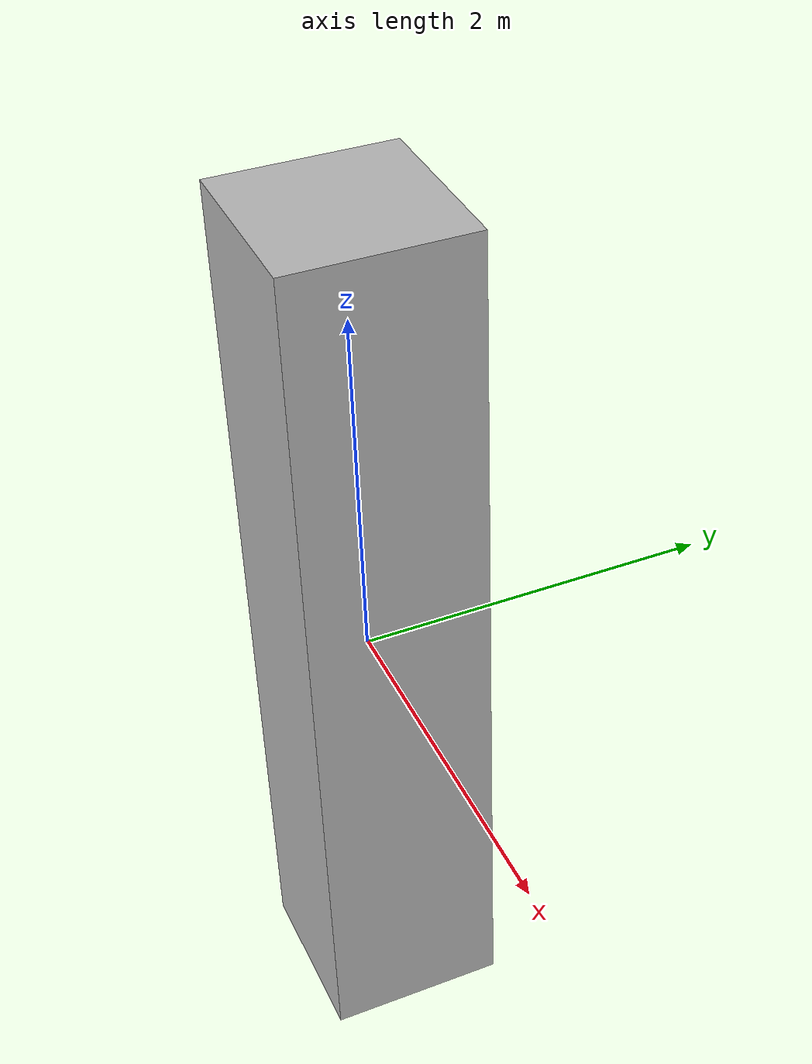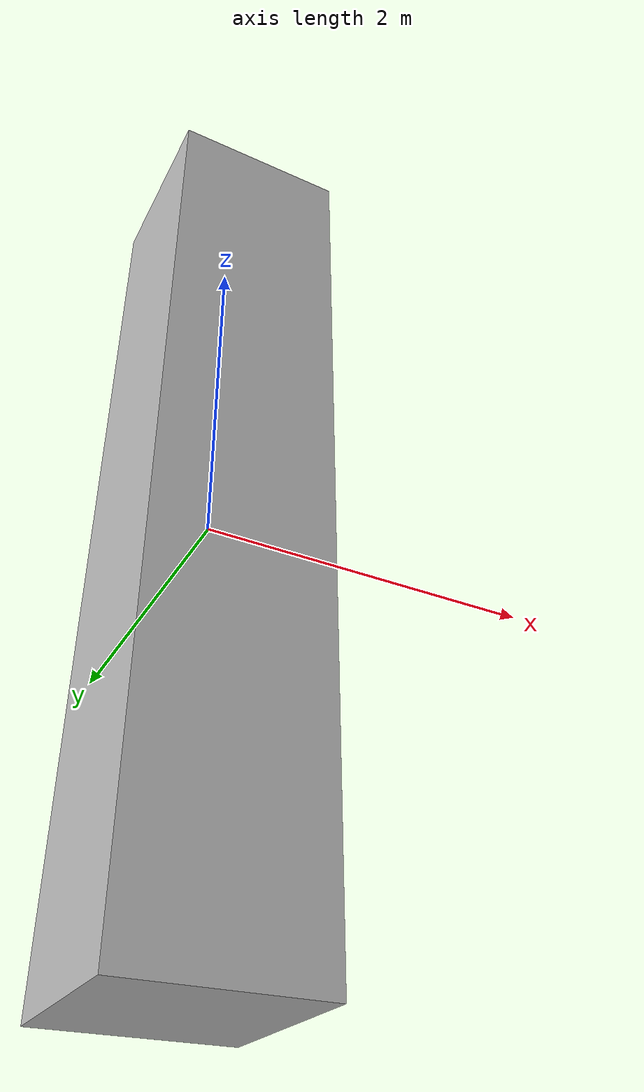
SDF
<?xml version='1.0'?>
<sdf version='1.4'>
  <model name="wall_10">
  <static>false</static>
    <link name='wall'>
      <pose>0 0 .1 0 0 0</pose>
      <collision name='collision'>
        <geometry>
          <box>
            <size>1.0 1.0 5.0</size>
          </box>
        </geometry>
      </collision>
      <visual name='visual'>
        <geometry>
          <box>
             <size>1.0 1.0 5.0</size>
          </box>
        </geometry>
      </visual>
    </link>
  </model>
</sdf>
